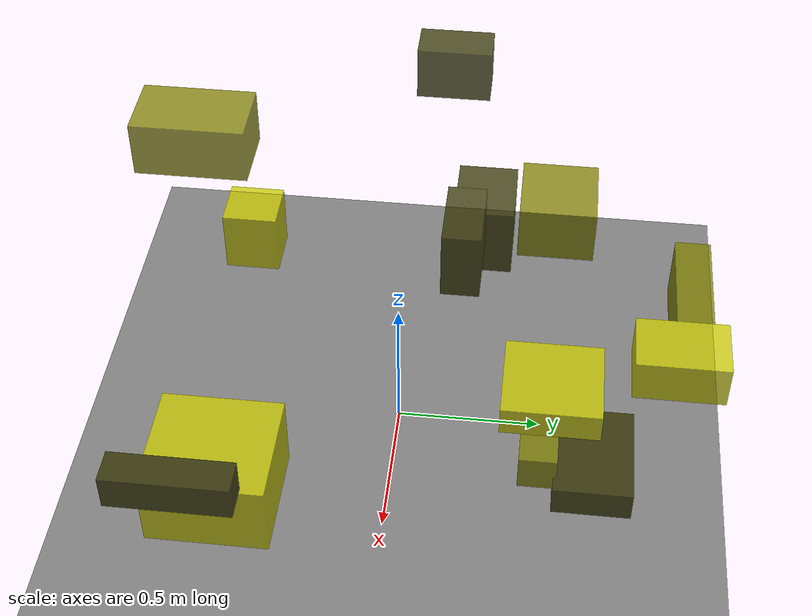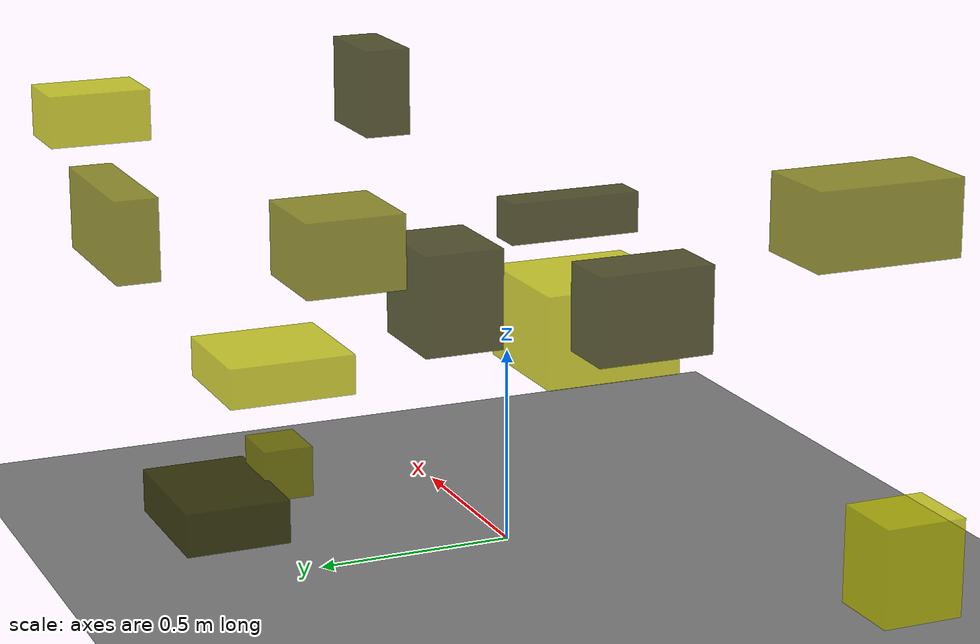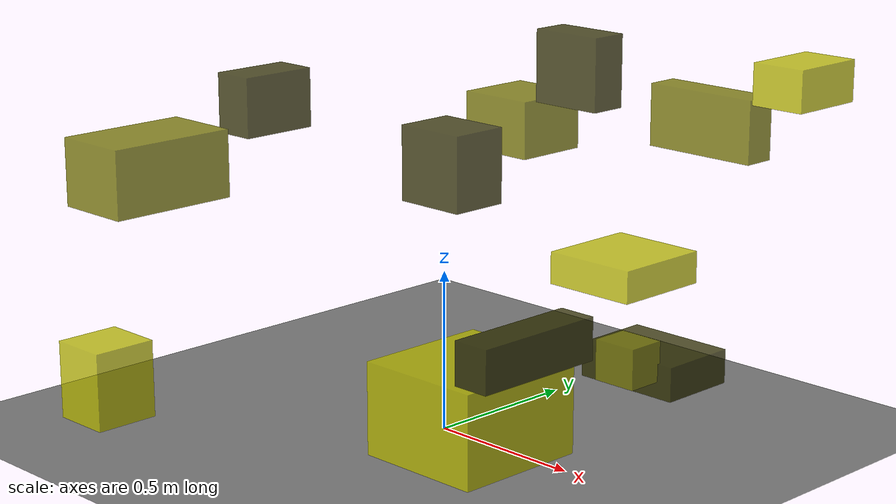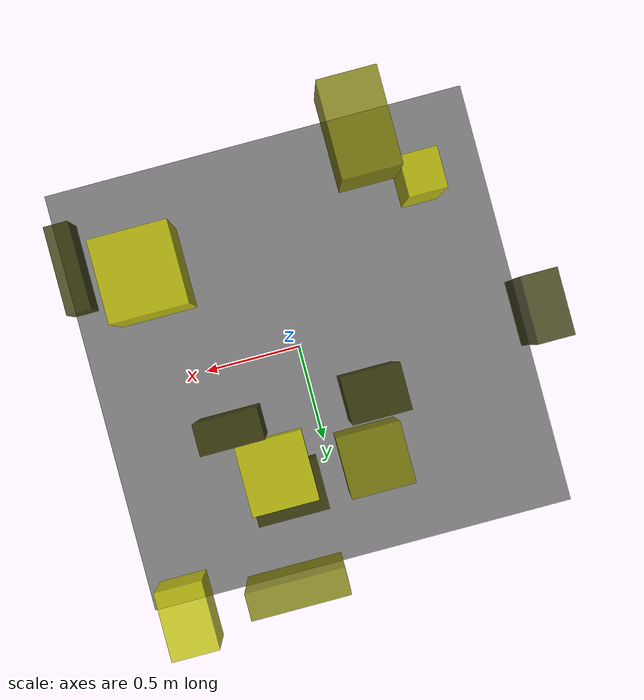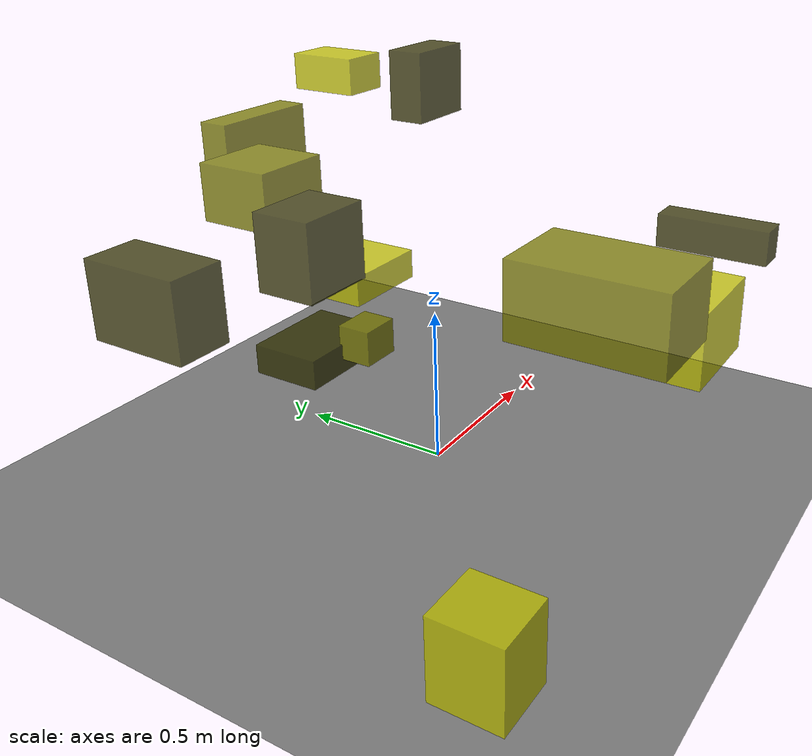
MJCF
<?xml version="1.0"?>
<mujoco model="obstacle_scene">
  <compiler angle="radian" coordinate="local"/>
  <option timestep="0.001" gravity="0 0 -9.81"/>

  <asset>
    <material name="obstacle_mat" rgba="0.8 0.8 0.0 0.8"/>
    <material name="ground_mat" rgba="0.5 0.5 0.5 1"/>
  </asset>

  <worldbody>
    <!-- Ground plane -->
    <geom name="ground" type="plane" size="3 3 0.1" material="ground_mat"/>

    <!-- Obstacles -->
    <body name="obstacle_0" pos="0.878820 -0.576089 0.590076">
      <geom name="obs_0" type="box" size="0.054350 0.195845 0.059550" rgba="0.2 0.2 0.0 0.8"/>
    </body>
    <body name="obstacle_1" pos="-0.162964 0.505860 0.863989">
      <geom name="obs_1" type="box" size="0.126951 0.122230 0.090605" rgba="0.5 0.5 0.0 0.8"/>
    </body>
    <body name="obstacle_2" pos="0.657085 0.860713 1.048847">
      <geom name="obs_2" type="box" size="0.089608 0.128718 0.065094" rgba="0.8 0.8 0.0 0.8"/>
    </body>
    <body name="obstacle_3" pos="0.244338 0.691642 0.107943">
      <geom name="obs_3" type="box" size="0.183222 0.133327 0.055798" rgba="0.2 0.2 0.0 0.8"/>
    </body>
    <body name="obstacle_4" pos="-0.433174 -0.756855 0.873140">
      <geom name="obs_4" type="box" size="0.120073 0.197443 0.100416" rgba="0.5 0.5 0.0 0.8"/>
    </body>
    <body name="obstacle_5" pos="0.622513 -0.512947 0.356420">
      <geom name="obs_5" type="box" size="0.188326 0.198528 0.131091" rgba="0.8 0.8 0.0 0.8"/>
    </body>
    <body name="obstacle_6" pos="0.320996 0.230829 1.130689">
      <geom name="obs_6" type="box" size="0.114579 0.056755 0.107961" rgba="0.2 0.2 0.0 0.8"/>
    </body>
    <body name="obstacle_7" pos="0.297399 0.504010 0.171638">
      <geom name="obs_7" type="box" size="0.075803 0.063913 0.065909" rgba="0.5 0.5 0.0 0.8"/>
    </body>
    <body name="obstacle_8" pos="-0.805121 -0.668524 0.124872">
      <geom name="obs_8" type="box" size="0.097057 0.104369 0.124156" rgba="0.8 0.8 0.0 0.8"/>
    </body>
    <body name="obstacle_9" pos="-0.238924 0.267257 0.745012">
      <geom name="obs_9" type="box" size="0.122733 0.097707 0.122350" rgba="0.2 0.2 0.0 0.8"/>
    </body>
    <body name="obstacle_10" pos="0.257979 0.922470 0.859416">
      <geom name="obs_10" type="box" size="0.198389 0.053733 0.101911" rgba="0.5 0.5 0.0 0.8"/>
    </body>
    <body name="obstacle_11" pos="0.249360 0.531524 0.456060">
      <geom name="obs_11" type="box" size="0.156071 0.162684 0.051421" rgba="0.8 0.8 0.0 0.8"/>
    </body>
    <body name="obstacle_12" pos="-0.945387 0.103113 0.870315">
      <geom name="obs_12" type="box" size="0.072687 0.134090 0.099446" rgba="0.2 0.2 0.0 0.8"/>
    </body>
  </worldbody>
</mujoco>
